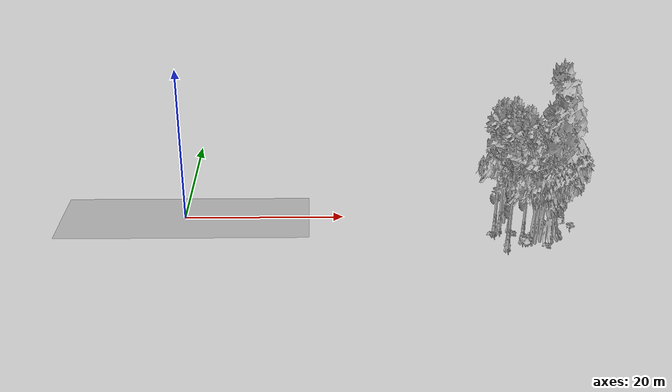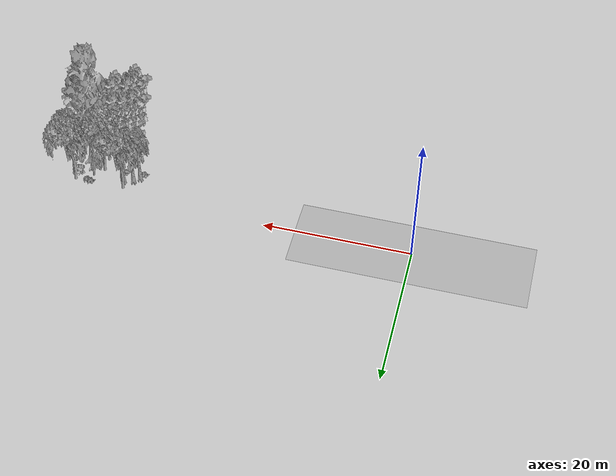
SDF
<sdf version="1.7">
 <world name="default">
  <model name="ground_plane">
   <static>1</static>
   <link name="link">
    <collision name="collision">
     <geometry><plane><normal>0 0 1</normal><size>100 100</size></plane></geometry>
     <surface><contact><ode><min_depth>0.01</min_depth><max_vel>0</max_vel></ode></contact></surface>
    </collision>
    <visual name="grass">
     <cast_shadows>0</cast_shadows>
     <geometry>
      <mesh>
       <scale>0.5814285714285714 0.18142857142857144 0.1</scale>
       <uri>file://grass_plane/meshes/grass_plane.dae</uri>
      </mesh>
     </geometry>
    </visual>
   </link>
  </model>
  <model name="Tree 32">
   <static>1</static>
   <pose>41.65381926326293 -5.7250531337227315 0 1.57079 -0 0</pose>
   <link name="link">
    <collision name="collision">
     <geometry><mesh><scale>3.5 5 3.5</scale><uri>model://tree_9/meshes/tree_9.obj</uri></mesh></geometry>
    </collision>
    <visual name="visual">
     <geometry><mesh><scale>3.5 5 3.5</scale><uri>model://tree_9/meshes/tree_9.obj</uri></mesh></geometry>
    </visual>
   </link>
  </model>
  <model name="Tree 108">
   <static>1</static>
   <pose>42.93216641186301 -6.667143374000023 0 1.57079 -0 0</pose>
   <link name="link">
    <collision name="collision">
     <geometry><mesh><scale>3.5 5 3.5</scale><uri>model://tree_2/meshes/tree_2.obj</uri></mesh></geometry>
    </collision>
    <visual name="visual">
     <geometry><mesh><scale>3.5 5 3.5</scale><uri>model://tree_2/meshes/tree_2.obj</uri></mesh></geometry>
    </visual>
   </link>
  </model>
  <model name="Tree 154">
   <static>1</static>
   <pose>39.263949986930385 -3.3578480658696837 0 1.57079 -0 0</pose>
   <link name="link">
    <collision name="collision">
     <geometry><mesh><scale>3.5 5 3.5</scale><uri>model://tree_9/meshes/tree_9.obj</uri></mesh></geometry>
    </collision>
    <visual name="visual">
     <geometry><mesh><scale>3.5 5 3.5</scale><uri>model://tree_9/meshes/tree_9.obj</uri></mesh></geometry>
    </visual>
   </link>
  </model>
  <model name="Tree 201">
   <static>1</static>
   <pose>38.50878843945935 -4.040444275200997 0 1.57079 -0 0</pose>
   <link name="link">
    <collision name="collision">
     <geometry><mesh><scale>3.5 5 3.5</scale><uri>model://tree_9/meshes/tree_9.obj</uri></mesh></geometry>
    </collision>
    <visual name="visual">
     <geometry><mesh><scale>3.5 5 3.5</scale><uri>model://tree_9/meshes/tree_9.obj</uri></mesh></geometry>
    </visual>
   </link>
  </model>
  <model name="Tree 258">
   <static>1</static>
   <pose>45.212045402026604 -4.853071491727569 0 1.57079 -0 0</pose>
   <link name="link">
    <collision name="collision">
     <geometry><mesh><scale>3.5 5 3.5</scale><uri>model://tree_4/meshes/tree_4.obj</uri></mesh></geometry>
    </collision>
    <visual name="visual">
     <geometry><mesh><scale>3.5 5 3.5</scale><uri>model://tree_4/meshes/tree_4.obj</uri></mesh></geometry>
    </visual>
   </link>
  </model>
  <model name="Tree 283">
   <static>1</static>
   <pose>46.87691949843072 -1.7610381510398128 0 1.57079 -0 0</pose>
   <link name="link">
    <collision name="collision">
     <geometry><mesh><scale>3.5 5 3.5</scale><uri>model://tree_2/meshes/tree_2.obj</uri></mesh></geometry>
    </collision>
    <visual name="visual">
     <geometry><mesh><scale>3.5 5 3.5</scale><uri>model://tree_2/meshes/tree_2.obj</uri></mesh></geometry>
    </visual>
   </link>
  </model>
  <model name="Tree 294">
   <static>1</static>
   <pose>43.555481997679976 -4.243552857913086 0 1.57079 -0 0</pose>
   <link name="link">
    <collision name="collision">
     <geometry><mesh><scale>3.5 5 3.5</scale><uri>model://tree_2/meshes/tree_2.obj</uri></mesh></geometry>
    </collision>
    <visual name="visual">
     <geometry><mesh><scale>3.5 5 3.5</scale><uri>model://tree_2/meshes/tree_2.obj</uri></mesh></geometry>
    </visual>
   </link>
  </model>
  <model name="Tree 317">
   <static>1</static>
   <pose>42.389741100136874 -7.073356616130529 0 1.57079 -0 0</pose>
   <link name="link">
    <collision name="collision">
     <geometry><mesh><scale>3.5 5 3.5</scale><uri>model://tree_2/meshes/tree_2.obj</uri></mesh></geometry>
    </collision>
    <visual name="visual">
     <geometry><mesh><scale>3.5 5 3.5</scale><uri>model://tree_2/meshes/tree_2.obj</uri></mesh></geometry>
    </visual>
   </link>
  </model>
  <model name="Tree 323">
   <static>1</static>
   <pose>40.57033689392803 -3.053676281330457 0 1.57079 -0 0</pose>
   <link name="link">
    <collision name="collision">
     <geometry><mesh><scale>3.5 5 3.5</scale><uri>model://tree_9/meshes/tree_9.obj</uri></mesh></geometry>
    </collision>
    <visual name="visual">
     <geometry><mesh><scale>3.5 5 3.5</scale><uri>model://tree_9/meshes/tree_9.obj</uri></mesh></geometry>
    </visual>
   </link>
  </model>
  <model name="Tree 357">
   <static>1</static>
   <pose>40.09687445347886 -1.7200510898652155 0 1.57079 -0 0</pose>
   <link name="link">
    <collision name="collision">
     <geometry><mesh><scale>3.5 5 3.5</scale><uri>model://tree_2/meshes/tree_2.obj</uri></mesh></geometry>
    </collision>
    <visual name="visual">
     <geometry><mesh><scale>3.5 5 3.5</scale><uri>model://tree_2/meshes/tree_2.obj</uri></mesh></geometry>
    </visual>
   </link>
  </model>
  <model name="Tree 382">
   <static>1</static>
   <pose>39.543471328207644 -7.4834440083462415 0 1.57079 -0 0</pose>
   <link name="link">
    <collision name="collision">
     <geometry><mesh><scale>3.5 5 3.5</scale><uri>model://tree_9/meshes/tree_9.obj</uri></mesh></geometry>
    </collision>
    <visual name="visual">
     <geometry><mesh><scale>3.5 5 3.5</scale><uri>model://tree_9/meshes/tree_9.obj</uri></mesh></geometry>
    </visual>
   </link>
  </model>
  <model name="Tree 393">
   <static>1</static>
   <pose>43.60546924688069 -6.258069801089455 0 1.57079 -0 0</pose>
   <link name="link">
    <collision name="collision">
     <geometry><mesh><scale>3.5 5 3.5</scale><uri>model://tree_2/meshes/tree_2.obj</uri></mesh></geometry>
    </collision>
    <visual name="visual">
     <geometry><mesh><scale>3.5 5 3.5</scale><uri>model://tree_2/meshes/tree_2.obj</uri></mesh></geometry>
    </visual>
   </link>
  </model>
  <model name="Tree 429">
   <static>1</static>
   <pose>39.77130573373623 -6.368094110844748 0 1.57079 -0 0</pose>
   <link name="link">
    <collision name="collision">
     <geometry><mesh><scale>3.5 5 3.5</scale><uri>model://tree_9/meshes/tree_9.obj</uri></mesh></geometry>
    </collision>
    <visual name="visual">
     <geometry><mesh><scale>3.5 5 3.5</scale><uri>model://tree_9/meshes/tree_9.obj</uri></mesh></geometry>
    </visual>
   </link>
  </model>
  <model name="Bush 26">
   <static>1</static>
   <pose>38.06979006840619 -4.65586141975648 0 1.57079 -0 0</pose>
   <link name="link">
    <collision name="collision">
     <geometry><mesh><scale>2 2 2</scale><uri>model://bush_2/meshes/bush_2.obj</uri></mesh></geometry>
     <surface><contact><collide_without_contact>false</collide_without_contact></contact></surface>
    </collision>
    <visual name="visual">
     <geometry><mesh><scale>2 2 2</scale><uri>model://bush_2/meshes/bush_2.obj</uri></mesh></geometry>
    </visual>
   </link>
  </model>
  <model name="Bush 78">
   <static>1</static>
   <pose>44.87822577235593 -1.8383543373242368 0 1.57079 -0 0</pose>
   <link name="link">
    <collision name="collision">
     <geometry><mesh><scale>2 2 2</scale><uri>model://bush_2/meshes/bush_2.obj</uri></mesh></geometry>
     <surface><contact><collide_without_contact>false</collide_without_contact></contact></surface>
    </collision>
    <visual name="visual">
     <geometry><mesh><scale>2 2 2</scale><uri>model://bush_2/meshes/bush_2.obj</uri></mesh></geometry>
    </visual>
   </link>
  </model>
  <model name="Bush 81">
   <static>1</static>
   <pose>45.40960945356558 -1.969173735365521 0 1.57079 -0 0</pose>
   <link name="link">
    <collision name="collision">
     <geometry><mesh><scale>2 2 2</scale><uri>model://bush_2/meshes/bush_2.obj</uri></mesh></geometry>
     <surface><contact><collide_without_contact>false</collide_without_contact></contact></surface>
    </collision>
    <visual name="visual">
     <geometry><mesh><scale>2 2 2</scale><uri>model://bush_2/meshes/bush_2.obj</uri></mesh></geometry>
    </visual>
   </link>
  </model>
  <model name="Bush 83">
   <static>1</static>
   <pose>41.748757568851545 -7.445536710501019 0 1.57079 -0 0</pose>
   <link name="link">
    <collision name="collision">
     <geometry><mesh><scale>2 2 2</scale><uri>model://bush_1/meshes/bush_1.obj</uri></mesh></geometry>
     <surface><contact><collide_without_contact>false</collide_without_contact></contact></surface>
    </collision>
    <visual name="visual">
     <geometry><mesh><scale>2 2 2</scale><uri>model://bush_1/meshes/bush_1.obj</uri></mesh></geometry>
    </visual>
   </link>
  </model>
  <model name="Bush 132">
   <static>1</static>
   <pose>46.724774520115815 -2.669146260452429 0 1.57079 -0 0</pose>
   <link name="link">
    <collision name="collision">
     <geometry><mesh><scale>2 2 2</scale><uri>model://bush_1/meshes/bush_1.obj</uri></mesh></geometry>
     <surface><contact><collide_without_contact>false</collide_without_contact></contact></surface>
    </collision>
    <visual name="visual">
     <geometry><mesh><scale>2 2 2</scale><uri>model://bush_1/meshes/bush_1.obj</uri></mesh></geometry>
    </visual>
   </link>
  </model>
  <model name="Bush 156">
   <static>1</static>
   <pose>42.01077651475535 -7.449817088745307 0 1.57079 -0 0</pose>
   <link name="link">
    <collision name="collision">
     <geometry><mesh><scale>2 2 2</scale><uri>model://bush_5/meshes/bush_5.obj</uri></mesh></geometry>
     <surface><contact><collide_without_contact>false</collide_without_contact></contact></surface>
    </collision>
    <visual name="visual">
     <geometry><mesh><scale>2 2 2</scale><uri>model://bush_5/meshes/bush_5.obj</uri></mesh></geometry>
    </visual>
   </link>
  </model>
  <model name="Bush 289">
   <static>1</static>
   <pose>40.68696354605463 -4.427425230294599 0 1.57079 -0 0</pose>
   <link name="link">
    <collision name="collision">
     <geometry><mesh><scale>2 2 2</scale><uri>model://bush_2/meshes/bush_2.obj</uri></mesh></geometry>
     <surface><contact><collide_without_contact>false</collide_without_contact></contact></surface>
    </collision>
    <visual name="visual">
     <geometry><mesh><scale>2 2 2</scale><uri>model://bush_2/meshes/bush_2.obj</uri></mesh></geometry>
    </visual>
   </link>
  </model>
  <model name="Bush 304">
   <static>1</static>
   <pose>47.84729684916681 -4.202159150749345 0 1.57079 -0 0</pose>
   <link name="link">
    <collision name="collision">
     <geometry><mesh><scale>2 2 2</scale><uri>model://bush_5/meshes/bush_5.obj</uri></mesh></geometry>
     <surface><contact><collide_without_contact>false</collide_without_contact></contact></surface>
    </collision>
    <visual name="visual">
     <geometry><mesh><scale>2 2 2</scale><uri>model://bush_5/meshes/bush_5.obj</uri></mesh></geometry>
    </visual>
   </link>
  </model>
  <model name="Bush 314">
   <static>1</static>
   <pose>44.30212312015372 -7.275764727716563 0 1.57079 -0 0</pose>
   <link name="link">
    <collision name="collision">
     <geometry><mesh><scale>2 2 2</scale><uri>model://bush_2/meshes/bush_2.obj</uri></mesh></geometry>
     <surface><contact><collide_without_contact>false</collide_without_contact></contact></surface>
    </collision>
    <visual name="visual">
     <geometry><mesh><scale>2 2 2</scale><uri>model://bush_2/meshes/bush_2.obj</uri></mesh></geometry>
    </visual>
   </link>
  </model>
 </world>
</sdf>
